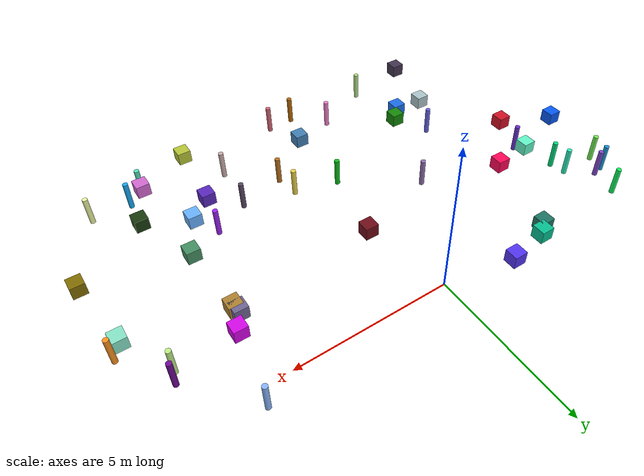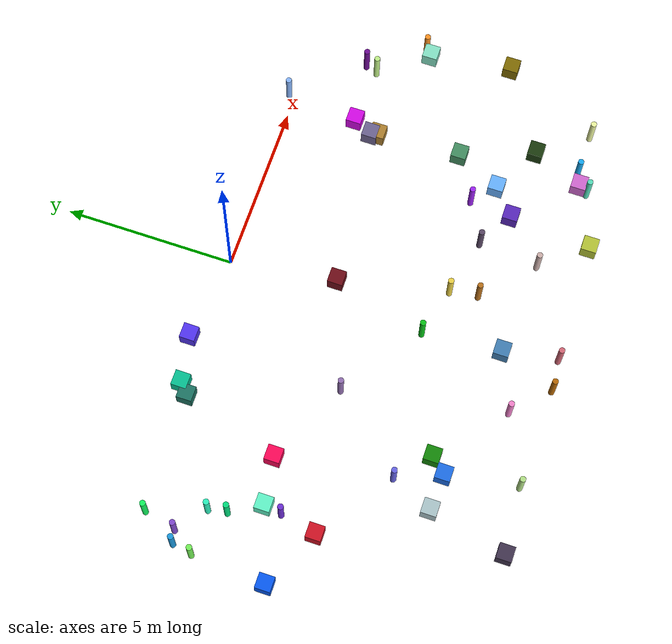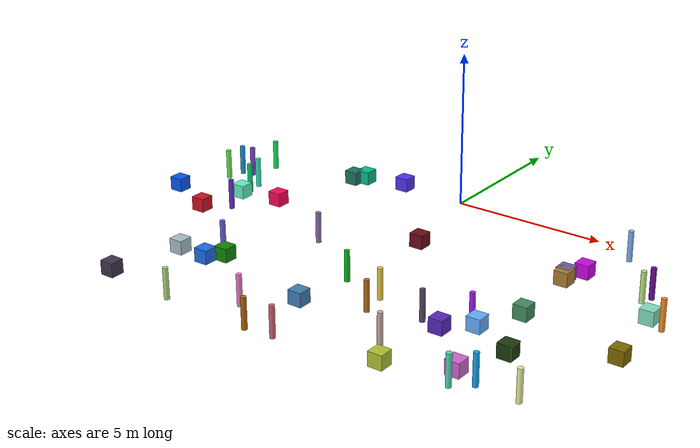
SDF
<sdf version="1.7">
 <world name="warehouse">
  <model name="ground_plane">
   <static>true</static>
   <link name="link">
    <collision name="collision">
     <geometry><plane><normal>0.0 0.0 1</normal><size>1 1</size></plane></geometry>
    </collision>
   </link>
  </model>
  <model name="unit_box_0">
   <static>true</static>
   <pose>5.26 -2.51 0 0 0 0</pose>
   <link name="link">
    <collision name="collision">
     <geometry><box><size>0.450000 0.450000 0.450000</size></box></geometry>
    </collision>
    <visual name="visual">
     <geometry><box><size>0.450000 0.450000 0.450000</size></box></geometry>
     <material>
      <ambient>0.43202939016654884 0.3962570603136538 0.5755469268648844 1</ambient>
      <diffuse>0.43202939016654884 0.3962570603136538 0.5755469268648844 1</diffuse>
      <script><uri>file://media/materials/scripts/gazebo.material</uri><name>Gazebo/RandomColor0</name></script>
     </material>
    </visual>
   </link>
  </model>
  <model name="unit_box_1">
   <static>true</static>
   <pose>-6.76 -4.89 0 0 0 0</pose>
   <link name="link">
    <collision name="collision">
     <geometry><box><size>0.450000 0.450000 0.450000</size></box></geometry>
    </collision>
    <visual name="visual">
     <geometry><box><size>0.450000 0.450000 0.450000</size></box></geometry>
     <material>
      <ambient>0.819177108545898 0.07014940217492016 0.14122524751487286 1</ambient>
      <diffuse>0.819177108545898 0.07014940217492016 0.14122524751487286 1</diffuse>
      <script><uri>file://media/materials/scripts/gazebo.material</uri><name>Gazebo/RandomColor1</name></script>
     </material>
    </visual>
   </link>
  </model>
  <model name="unit_box_2">
   <static>true</static>
   <pose>6.26 -7.34 0 0 0 0</pose>
   <link name="link">
    <collision name="collision">
     <geometry><box><size>0.450000 0.450000 0.450000</size></box></geometry>
    </collision>
    <visual name="visual">
     <geometry><box><size>0.450000 0.450000 0.450000</size></box></geometry>
     <material>
      <ambient>0.10668478872073783 0.23271584521577438 0.0581064482529583 1</ambient>
      <diffuse>0.10668478872073783 0.23271584521577438 0.0581064482529583 1</diffuse>
      <script><uri>file://media/materials/scripts/gazebo.material</uri><name>Gazebo/RandomColor2</name></script>
     </material>
    </visual>
   </link>
  </model>
  <model name="unit_cylinder_2">
   <static>true</static>
   <pose>-8.21 -1.26 0 0 0 0</pose>
   <link name="link">
    <collision name="collision">
     <geometry><cylinder><radius>0.085000</radius><length>1.000000</length></cylinder></geometry>
    </collision>
    <visual name="visual">
     <geometry><cylinder><radius>0.085000</radius><length>1.000000</length></cylinder></geometry>
     <material>
      <ambient>0.10351426530257501 0.6006918893140594 0.8723455229145314 1</ambient>
      <diffuse>0.10351426530257501 0.6006918893140594 0.8723455229145314 1</diffuse>
      <script><uri>file://media/materials/scripts/gazebo.material</uri><name>Gazebo/RandomColor2</name></script>
     </material>
    </visual>
   </link>
  </model>
  <model name="unit_box_3">
   <static>true</static>
   <pose>4.04 -7.23 0 0 0 0</pose>
   <link name="link">
    <collision name="collision">
     <geometry><box><size>0.450000 0.450000 0.450000</size></box></geometry>
    </collision>
    <visual name="visual">
     <geometry><box><size>0.450000 0.450000 0.450000</size></box></geometry>
     <material>
      <ambient>0.34692849095820044 0.15448976044086282 0.7400478806862895 1</ambient>
      <diffuse>0.34692849095820044 0.15448976044086282 0.7400478806862895 1</diffuse>
      <script><uri>file://media/materials/scripts/gazebo.material</uri><name>Gazebo/RandomColor3</name></script>
     </material>
    </visual>
   </link>
  </model>
  <model name="unit_cylinder_3">
   <static>true</static>
   <pose>-8.33 -1.84 0 0 0 0</pose>
   <link name="link">
    <collision name="collision">
     <geometry><cylinder><radius>0.085000</radius><length>1.000000</length></cylinder></geometry>
    </collision>
    <visual name="visual">
     <geometry><cylinder><radius>0.085000</radius><length>1.000000</length></cylinder></geometry>
     <material>
      <ambient>0.45447844408793303 0.943040436088593 0.34123071947217154 1</ambient>
      <diffuse>0.45447844408793303 0.943040436088593 0.34123071947217154 1</diffuse>
      <script><uri>file://media/materials/scripts/gazebo.material</uri><name>Gazebo/RandomColor3</name></script>
     </material>
    </visual>
   </link>
  </model>
  <model name="unit_box_7">
   <static>true</static>
   <pose>-4.03 -7.71 0 0 0 0</pose>
   <link name="link">
    <collision name="collision">
     <geometry><box><size>0.450000 0.450000 0.450000</size></box></geometry>
    </collision>
    <visual name="visual">
     <geometry><box><size>0.450000 0.450000 0.450000</size></box></geometry>
     <material>
      <ambient>0.10983432305211271 0.43165200785266344 0.9086816025007106 1</ambient>
      <diffuse>0.10983432305211271 0.43165200785266344 0.9086816025007106 1</diffuse>
      <script><uri>file://media/materials/scripts/gazebo.material</uri><name>Gazebo/RandomColor7</name></script>
     </material>
    </visual>
   </link>
  </model>
  <model name="unit_cylinder_7">
   <static>true</static>
   <pose>2.91 -8.39 0 0 0 0</pose>
   <link name="link">
    <collision name="collision">
     <geometry><cylinder><radius>0.085000</radius><length>1.000000</length></cylinder></geometry>
    </collision>
    <visual name="visual">
     <geometry><cylinder><radius>0.085000</radius><length>1.000000</length></cylinder></geometry>
     <material>
      <ambient>0.8035718736528988 0.6893961803614237 0.6732238959655333 1</ambient>
      <diffuse>0.8035718736528988 0.6893961803614237 0.6732238959655333 1</diffuse>
      <script><uri>file://media/materials/scripts/gazebo.material</uri><name>Gazebo/RandomColor7</name></script>
     </material>
    </visual>
   </link>
  </model>
  <model name="unit_box_8">
   <static>true</static>
   <pose>5.64 -8.84 0 0 0 0</pose>
   <link name="link">
    <collision name="collision">
     <geometry><box><size>0.450000 0.450000 0.450000</size></box></geometry>
    </collision>
    <visual name="visual">
     <geometry><box><size>0.450000 0.450000 0.450000</size></box></geometry>
     <material>
      <ambient>0.8262752305445372 0.4098498693275403 0.8204671507731207 1</ambient>
      <diffuse>0.8262752305445372 0.4098498693275403 0.8204671507731207 1</diffuse>
      <script><uri>file://media/materials/scripts/gazebo.material</uri><name>Gazebo/RandomColor8</name></script>
     </material>
    </visual>
   </link>
  </model>
  <model name="unit_box_9">
   <static>true</static>
   <pose>-5.63 -9.96 0 0 0 0</pose>
   <link name="link">
    <collision name="collision">
     <geometry><box><size>0.450000 0.450000 0.450000</size></box></geometry>
    </collision>
    <visual name="visual">
     <geometry><box><size>0.450000 0.450000 0.450000</size></box></geometry>
     <material>
      <ambient>0.25590518715539634 0.206803490912833 0.3127133192203775 1</ambient>
      <diffuse>0.25590518715539634 0.206803490912833 0.3127133192203775 1</diffuse>
      <script><uri>file://media/materials/scripts/gazebo.material</uri><name>Gazebo/RandomColor9</name></script>
     </material>
    </visual>
   </link>
  </model>
  <model name="unit_cylinder_11">
   <static>true</static>
   <pose>-1.63 -8.9 0 0 0 0</pose>
   <link name="link">
    <collision name="collision">
     <geometry><cylinder><radius>0.085000</radius><length>1.000000</length></cylinder></geometry>
    </collision>
    <visual name="visual">
     <geometry><cylinder><radius>0.085000</radius><length>1.000000</length></cylinder></geometry>
     <material>
      <ambient>0.9560895933345551 0.5076012034003116 0.8012562688026061 1</ambient>
      <diffuse>0.9560895933345551 0.5076012034003116 0.8012562688026061 1</diffuse>
      <script><uri>file://media/materials/scripts/gazebo.material</uri><name>Gazebo/RandomColor11</name></script>
     </material>
    </visual>
   </link>
  </model>
  <model name="unit_cylinder_12">
   <static>true</static>
   <pose>1.33 -6.22 0 0 0 0</pose>
   <link name="link">
    <collision name="collision">
     <geometry><cylinder><radius>0.085000</radius><length>1.000000</length></cylinder></geometry>
    </collision>
    <visual name="visual">
     <geometry><cylinder><radius>0.085000</radius><length>1.000000</length></cylinder></geometry>
     <material>
      <ambient>0.9297428224474175 0.8245526506272884 0.2701821049162041 1</ambient>
      <diffuse>0.9297428224474175 0.8245526506272884 0.2701821049162041 1</diffuse>
      <script><uri>file://media/materials/scripts/gazebo.material</uri><name>Gazebo/RandomColor12</name></script>
     </material>
    </visual>
   </link>
  </model>
  <model name="unit_box_13">
   <static>true</static>
   <pose>4.81 -6.56 0 0 0 0</pose>
   <link name="link">
    <collision name="collision">
     <geometry><box><size>0.450000 0.450000 0.450000</size></box></geometry>
    </collision>
    <visual name="visual">
     <geometry><box><size>0.450000 0.450000 0.450000</size></box></geometry>
     <material>
      <ambient>0.4045642219721922 0.6972812041949532 0.9982984414417417 1</ambient>
      <diffuse>0.4045642219721922 0.6972812041949532 0.9982984414417417 1</diffuse>
      <script><uri>file://media/materials/scripts/gazebo.material</uri><name>Gazebo/RandomColor13</name></script>
     </material>
    </visual>
   </link>
  </model>
  <model name="unit_cylinder_14">
   <static>true</static>
   <pose>0.33 -9.79 0 0 0 0</pose>
   <link name="link">
    <collision name="collision">
     <geometry><cylinder><radius>0.085000</radius><length>1.000000</length></cylinder></geometry>
    </collision>
    <visual name="visual">
     <geometry><cylinder><radius>0.085000</radius><length>1.000000</length></cylinder></geometry>
     <material>
      <ambient>0.8340839901987306 0.40238781152428527 0.46213912938035795 1</ambient>
      <diffuse>0.8340839901987306 0.40238781152428527 0.46213912938035795 1</diffuse>
      <script><uri>file://media/materials/scripts/gazebo.material</uri><name>Gazebo/RandomColor14</name></script>
     </material>
    </visual>
   </link>
  </model>
  <model name="unit_cylinder_16">
   <static>true</static>
   <pose>-7.59 -0.22 0 0 0 0</pose>
   <link name="link">
    <collision name="collision">
     <geometry><cylinder><radius>0.085000</radius><length>1.000000</length></cylinder></geometry>
    </collision>
    <visual name="visual">
     <geometry><cylinder><radius>0.085000</radius><length>1.000000</length></cylinder></geometry>
     <material>
      <ambient>0.06593349279248428 0.9611517690750122 0.37598762150471554 1</ambient>
      <diffuse>0.06593349279248428 0.9611517690750122 0.37598762150471554 1</diffuse>
      <script><uri>file://media/materials/scripts/gazebo.material</uri><name>Gazebo/RandomColor16</name></script>
     </material>
    </visual>
   </link>
  </model>
  <model name="unit_box_17">
   <static>true</static>
   <pose>-6.44 -3.3 0 0 0 0</pose>
   <link name="link">
    <collision name="collision">
     <geometry><box><size>0.450000 0.450000 0.450000</size></box></geometry>
    </collision>
    <visual name="visual">
     <geometry><box><size>0.450000 0.450000 0.450000</size></box></geometry>
     <material>
      <ambient>0.3824762522813735 0.9643269073762822 0.786280959829367 1</ambient>
      <diffuse>0.3824762522813735 0.9643269073762822 0.786280959829367 1</diffuse>
      <script><uri>file://media/materials/scripts/gazebo.material</uri><name>Gazebo/RandomColor17</name></script>
     </material>
    </visual>
   </link>
  </model>
  <model name="unit_box_18">
   <static>true</static>
   <pose>-2.45 0.36 0 0 0 0</pose>
   <link name="link">
    <collision name="collision">
     <geometry><box><size>0.450000 0.450000 0.450000</size></box></geometry>
    </collision>
    <visual name="visual">
     <geometry><box><size>0.450000 0.450000 0.450000</size></box></geometry>
     <material>
      <ambient>0.32668322412410267 0.20534435669074802 0.9529161749962964 1</ambient>
      <diffuse>0.32668322412410267 0.20534435669074802 0.9529161749962964 1</diffuse>
      <script><uri>file://media/materials/scripts/gazebo.material</uri><name>Gazebo/RandomColor18</name></script>
     </material>
    </visual>
   </link>
  </model>
  <model name="unit_cylinder_18">
   <static>true</static>
   <pose>-4.49 -6.41 0 0 0 0</pose>
   <link name="link">
    <collision name="collision">
     <geometry><cylinder><radius>0.085000</radius><length>1.000000</length></cylinder></geometry>
    </collision>
    <visual name="visual">
     <geometry><cylinder><radius>0.085000</radius><length>1.000000</length></cylinder></geometry>
     <material>
      <ambient>0.4016583978003808 0.3929259386161843 0.8950625952644654 1</ambient>
      <diffuse>0.4016583978003808 0.3929259386161843 0.8950625952644654 1</diffuse>
      <script><uri>file://media/materials/scripts/gazebo.material</uri><name>Gazebo/RandomColor18</name></script>
     </material>
    </visual>
   </link>
  </model>
  <model name="unit_cylinder_19">
   <static>true</static>
   <pose>-0.14 -5.85 0 0 0 0</pose>
   <link name="link">
    <collision name="collision">
     <geometry><cylinder><radius>0.085000</radius><length>1.000000</length></cylinder></geometry>
    </collision>
    <visual name="visual">
     <geometry><cylinder><radius>0.085000</radius><length>1.000000</length></cylinder></geometry>
     <material>
      <ambient>0.03614622663122813 0.7619976336195233 0.09520147919918553 1</ambient>
      <diffuse>0.03614622663122813 0.7619976336195233 0.09520147919918553 1</diffuse>
      <script><uri>file://media/materials/scripts/gazebo.material</uri><name>Gazebo/RandomColor19</name></script>
     </material>
    </visual>
   </link>
  </model>
  <model name="unit_cylinder_21">
   <static>true</static>
   <pose>5.91 0.28 0 0 0 0</pose>
   <link name="link">
    <collision name="collision">
     <geometry><cylinder><radius>0.085000</radius><length>1.000000</length></cylinder></geometry>
    </collision>
    <visual name="visual">
     <geometry><cylinder><radius>0.085000</radius><length>1.000000</length></cylinder></geometry>
     <material>
      <ambient>0.532237017519545 0.7155495298891122 0.9928755079456031 1</ambient>
      <diffuse>0.532237017519545 0.7155495298891122 0.9928755079456031 1</diffuse>
      <script><uri>file://media/materials/scripts/gazebo.material</uri><name>Gazebo/RandomColor21</name></script>
     </material>
    </visual>
   </link>
  </model>
  <model name="unit_box_24">
   <static>true</static>
   <pose>5.32 -2.72 0 0 0 0</pose>
   <link name="link">
    <collision name="collision">
     <geometry><box><size>0.450000 0.450000 0.450000</size></box></geometry>
    </collision>
    <visual name="visual">
     <geometry><box><size>0.450000 0.450000 0.450000</size></box></geometry>
     <material>
      <ambient>0.6879740650999271 0.5103441999961785 0.19127419115800004 1</ambient>
      <diffuse>0.6879740650999271 0.5103441999961785 0.19127419115800004 1</diffuse>
      <script><uri>file://media/materials/scripts/gazebo.material</uri><name>Gazebo/RandomColor24</name></script>
     </material>
    </visual>
   </link>
  </model>
  <model name="unit_cylinder_24">
   <static>true</static>
   <pose>7.44 -8.72 0 0 0 0</pose>
   <link name="link">
    <collision name="collision">
     <geometry><cylinder><radius>0.085000</radius><length>1.000000</length></cylinder></geometry>
    </collision>
    <visual name="visual">
     <geometry><cylinder><radius>0.085000</radius><length>1.000000</length></cylinder></geometry>
     <material>
      <ambient>0.9345702939586452 0.9740121879646203 0.6325774929678573 1</ambient>
      <diffuse>0.9345702939586452 0.9740121879646203 0.6325774929678573 1</diffuse>
      <script><uri>file://media/materials/scripts/gazebo.material</uri><name>Gazebo/RandomColor24</name></script>
     </material>
    </visual>
   </link>
  </model>
  <model name="unit_box_25">
   <static>true</static>
   <pose>3.83 -9.67 0 0 0 0</pose>
   <link name="link">
    <collision name="collision">
     <geometry><box><size>0.450000 0.450000 0.450000</size></box></geometry>
    </collision>
    <visual name="visual">
     <geometry><box><size>0.450000 0.450000 0.450000</size></box></geometry>
     <material>
      <ambient>0.7114636675275324 0.7695708656584261 0.2129040315322458 1</ambient>
      <diffuse>0.7114636675275324 0.7695708656584261 0.2129040315322458 1</diffuse>
      <script><uri>file://media/materials/scripts/gazebo.material</uri><name>Gazebo/RandomColor25</name></script>
     </material>
    </visual>
   </link>
  </model>
  <model name="unit_box_26">
   <static>true</static>
   <pose>0.51 -3.06 0 0 0 0</pose>
   <link name="link">
    <collision name="collision">
     <geometry><box><size>0.450000 0.450000 0.450000</size></box></geometry>
    </collision>
    <visual name="visual">
     <geometry><box><size>0.450000 0.450000 0.450000</size></box></geometry>
     <material>
      <ambient>0.4348542314042716 0.04759222973809096 0.09490514664035521 1</ambient>
      <diffuse>0.4348542314042716 0.04759222973809096 0.09490514664035521 1</diffuse>
      <script><uri>file://media/materials/scripts/gazebo.material</uri><name>Gazebo/RandomColor26</name></script>
     </material>
    </visual>
   </link>
  </model>
  <model name="unit_cylinder_26">
   <static>true</static>
   <pose>-7.0 -1.84 0 0 0 0</pose>
   <link name="link">
    <collision name="collision">
     <geometry><cylinder><radius>0.085000</radius><length>1.000000</length></cylinder></geometry>
    </collision>
    <visual name="visual">
     <geometry><cylinder><radius>0.085000</radius><length>1.000000</length></cylinder></geometry>
     <material>
      <ambient>0.16925477455126625 0.9476753586979708 0.7468504632036498 1</ambient>
      <diffuse>0.16925477455126625 0.9476753586979708 0.7468504632036498 1</diffuse>
      <script><uri>file://media/materials/scripts/gazebo.material</uri><name>Gazebo/RandomColor26</name></script>
     </material>
    </visual>
   </link>
  </model>
  <model name="unit_box_27">
   <static>true</static>
   <pose>-5.09 -7.65 0 0 0 0</pose>
   <link name="link">
    <collision name="collision">
     <geometry><box><size>0.450000 0.450000 0.450000</size></box></geometry>
    </collision>
    <visual name="visual">
     <geometry><box><size>0.450000 0.450000 0.450000</size></box></geometry>
     <material>
      <ambient>0.6716614065627154 0.77232260562689 0.7937108615708452 1</ambient>
      <diffuse>0.6716614065627154 0.77232260562689 0.7937108615708452 1</diffuse>
      <script><uri>file://media/materials/scripts/gazebo.material</uri><name>Gazebo/RandomColor27</name></script>
     </material>
    </visual>
   </link>
  </model>
  <model name="unit_cylinder_28">
   <static>true</static>
   <pose>6.14 -8.7 0 0 0 0</pose>
   <link name="link">
    <collision name="collision">
     <geometry><cylinder><radius>0.085000</radius><length>1.000000</length></cylinder></geometry>
    </collision>
    <visual name="visual">
     <geometry><cylinder><radius>0.085000</radius><length>1.000000</length></cylinder></geometry>
     <material>
      <ambient>0.08469001447761026 0.6664901417848329 0.9555065527380054 1</ambient>
      <diffuse>0.08469001447761026 0.6664901417848329 0.9555065527380054 1</diffuse>
      <script><uri>file://media/materials/scripts/gazebo.material</uri><name>Gazebo/RandomColor28</name></script>
     </material>
    </visual>
   </link>
  </model>
  <model name="unit_box_29">
   <static>true</static>
   <pose>-0.04 -8.19 0 0 0 0</pose>
   <link name="link">
    <collision name="collision">
     <geometry><box><size>0.450000 0.450000 0.450000</size></box></geometry>
    </collision>
    <visual name="visual">
     <geometry><box><size>0.450000 0.450000 0.450000</size></box></geometry>
     <material>
      <ambient>0.2571616289950761 0.5011931493364319 0.7088345019997413 1</ambient>
      <diffuse>0.2571616289950761 0.5011931493364319 0.7088345019997413 1</diffuse>
      <script><uri>file://media/materials/scripts/gazebo.material</uri><name>Gazebo/RandomColor29</name></script>
     </material>
    </visual>
   </link>
  </model>
  <model name="unit_cylinder_29">
   <static>true</static>
   <pose>-6.47 -3.8 0 0 0 0</pose>
   <link name="link">
    <collision name="collision">
     <geometry><cylinder><radius>0.085000</radius><length>1.000000</length></cylinder></geometry>
    </collision>
    <visual name="visual">
     <geometry><cylinder><radius>0.085000</radius><length>1.000000</length></cylinder></geometry>
     <material>
      <ambient>0.4259956005815706 0.1821493295733293 0.8332154434371939 1</ambient>
      <diffuse>0.4259956005815706 0.1821493295733293 0.8332154434371939 1</diffuse>
      <script><uri>file://media/materials/scripts/gazebo.material</uri><name>Gazebo/RandomColor29</name></script>
     </material>
    </visual>
   </link>
  </model>
  <model name="unit_cylinder_30">
   <static>true</static>
   <pose>-3.6 -9.81 0 0 0 0</pose>
   <link name="link">
    <collision name="collision">
     <geometry><cylinder><radius>0.085000</radius><length>1.000000</length></cylinder></geometry>
    </collision>
    <visual name="visual">
     <geometry><cylinder><radius>0.085000</radius><length>1.000000</length></cylinder></geometry>
     <material>
      <ambient>0.7057820524488684 0.8826934879203675 0.5312731439108992 1</ambient>
      <diffuse>0.7057820524488684 0.8826934879203675 0.5312731439108992 1</diffuse>
      <script><uri>file://media/materials/scripts/gazebo.material</uri><name>Gazebo/RandomColor30</name></script>
     </material>
    </visual>
   </link>
  </model>
  <model name="unit_cylinder_32">
   <static>true</static>
   <pose>4.27 -5.96 0 0 0 0</pose>
   <link name="link">
    <collision name="collision">
     <geometry><cylinder><radius>0.085000</radius><length>1.000000</length></cylinder></geometry>
    </collision>
    <visual name="visual">
     <geometry><cylinder><radius>0.085000</radius><length>1.000000</length></cylinder></geometry>
     <material>
      <ambient>0.6139016079540541 0.13909225122365543 0.9539204106531455 1</ambient>
      <diffuse>0.6139016079540541 0.13909225122365543 0.9539204106531455 1</diffuse>
      <script><uri>file://media/materials/scripts/gazebo.material</uri><name>Gazebo/RandomColor32</name></script>
     </material>
    </visual>
   </link>
  </model>
  <model name="unit_cylinder_33">
   <static>true</static>
   <pose>-2.52 -4.2 0 0 0 0</pose>
   <link name="link">
    <collision name="collision">
     <geometry><cylinder><radius>0.085000</radius><length>1.000000</length></cylinder></geometry>
    </collision>
    <visual name="visual">
     <geometry><cylinder><radius>0.085000</radius><length>1.000000</length></cylinder></geometry>
     <material>
      <ambient>0.5780878965373135 0.44103521330318407 0.7016694886638687 1</ambient>
      <diffuse>0.5780878965373135 0.44103521330318407 0.7016694886638687 1</diffuse>
      <script><uri>file://media/materials/scripts/gazebo.material</uri><name>Gazebo/RandomColor33</name></script>
     </material>
    </visual>
   </link>
  </model>
  <model name="unit_cylinder_35">
   <static>true</static>
   <pose>-6.9 -2.38 0 0 0 0</pose>
   <link name="link">
    <collision name="collision">
     <geometry><cylinder><radius>0.085000</radius><length>1.000000</length></cylinder></geometry>
    </collision>
    <visual name="visual">
     <geometry><cylinder><radius>0.085000</radius><length>1.000000</length></cylinder></geometry>
     <material>
      <ambient>0.005832736579069131 0.8678606807172187 0.49066304342289346 1</ambient>
      <diffuse>0.005832736579069131 0.8678606807172187 0.49066304342289346 1</diffuse>
      <script><uri>file://media/materials/scripts/gazebo.material</uri><name>Gazebo/RandomColor35</name></script>
     </material>
    </visual>
   </link>
  </model>
  <model name="unit_box_36">
   <static>true</static>
   <pose>5.57 -1.93 0 0 0 0</pose>
   <link name="link">
    <collision name="collision">
     <geometry><box><size>0.450000 0.450000 0.450000</size></box></geometry>
    </collision>
    <visual name="visual">
     <geometry><box><size>0.450000 0.450000 0.450000</size></box></geometry>
     <material>
      <ambient>0.8366093313979793 0.026785296376179657 0.9095427806909463 1</ambient>
      <diffuse>0.8366093313979793 0.026785296376179657 0.9095427806909463 1</diffuse>
      <script><uri>file://media/materials/scripts/gazebo.material</uri><name>Gazebo/RandomColor36</name></script>
     </material>
    </visual>
   </link>
  </model>
  <model name="unit_cylinder_36">
   <static>true</static>
   <pose>8.65 -3.2 0 0 0 0</pose>
   <link name="link">
    <collision name="collision">
     <geometry><cylinder><radius>0.085000</radius><length>1.000000</length></cylinder></geometry>
    </collision>
    <visual name="visual">
     <geometry><cylinder><radius>0.085000</radius><length>1.000000</length></cylinder></geometry>
     <material>
      <ambient>0.9866331751206168 0.5737793419801975 0.1283723714070022 1</ambient>
      <diffuse>0.9866331751206168 0.5737793419801975 0.1283723714070022 1</diffuse>
      <script><uri>file://media/materials/scripts/gazebo.material</uri><name>Gazebo/RandomColor36</name></script>
     </material>
    </visual>
   </link>
  </model>
  <model name="unit_cylinder_37">
   <static>true</static>
   <pose>-0.61 -9.87 0 0 0 0</pose>
   <link name="link">
    <collision name="collision">
     <geometry><cylinder><radius>0.085000</radius><length>1.000000</length></cylinder></geometry>
    </collision>
    <visual name="visual">
     <geometry><cylinder><radius>0.085000</radius><length>1.000000</length></cylinder></geometry>
     <material>
      <ambient>0.7199865145186819 0.4129972892495325 0.026690108443849336 1</ambient>
      <diffuse>0.7199865145186819 0.4129972892495325 0.026690108443849336 1</diffuse>
      <script><uri>file://media/materials/scripts/gazebo.material</uri><name>Gazebo/RandomColor37</name></script>
     </material>
    </visual>
   </link>
  </model>
  <model name="unit_box_38">
   <static>true</static>
   <pose>5.46 -5.22 0 0 0 0</pose>
   <link name="link">
    <collision name="collision">
     <geometry><box><size>0.450000 0.450000 0.450000</size></box></geometry>
    </collision>
    <visual name="visual">
     <geometry><box><size>0.450000 0.450000 0.450000</size></box></geometry>
     <material>
      <ambient>0.2660468206855803 0.5595492994048827 0.3826059663937238 1</ambient>
      <diffuse>0.2660468206855803 0.5595492994048827 0.3826059663937238 1</diffuse>
      <script><uri>file://media/materials/scripts/gazebo.material</uri><name>Gazebo/RandomColor38</name></script>
     </material>
    </visual>
   </link>
  </model>
  <model name="unit_cylinder_39">
   <static>true</static>
   <pose>7.58 -1.63 0 0 0 0</pose>
   <link name="link">
    <collision name="collision">
     <geometry><cylinder><radius>0.085000</radius><length>1.000000</length></cylinder></geometry>
    </collision>
    <visual name="visual">
     <geometry><cylinder><radius>0.085000</radius><length>1.000000</length></cylinder></geometry>
     <material>
      <ambient>0.4295907872117726 0.04564809609070808 0.5815665373497025 1</ambient>
      <diffuse>0.4295907872117726 0.04564809609070808 0.5815665373497025 1</diffuse>
      <script><uri>file://media/materials/scripts/gazebo.material</uri><name>Gazebo/RandomColor39</name></script>
     </material>
    </visual>
   </link>
  </model>
  <model name="unit_box_40">
   <static>true</static>
   <pose>-3.63 -7.26 0 0 0 0</pose>
   <link name="link">
    <collision name="collision">
     <geometry><box><size>0.450000 0.450000 0.450000</size></box></geometry>
    </collision>
    <visual name="visual">
     <geometry><box><size>0.450000 0.450000 0.450000</size></box></geometry>
     <material>
      <ambient>0.07689670579750107 0.5326730305055952 0.03348312342993842 1</ambient>
      <diffuse>0.07689670579750107 0.5326730305055952 0.03348312342993842 1</diffuse>
      <script><uri>file://media/materials/scripts/gazebo.material</uri><name>Gazebo/RandomColor40</name></script>
     </material>
    </visual>
   </link>
  </model>
  <model name="unit_cylinder_41">
   <static>true</static>
   <pose>7.45 -1.99 0 0 0 0</pose>
   <link name="link">
    <collision name="collision">
     <geometry><cylinder><radius>0.085000</radius><length>1.000000</length></cylinder></geometry>
    </collision>
    <visual name="visual">
     <geometry><cylinder><radius>0.085000</radius><length>1.000000</length></cylinder></geometry>
     <material>
      <ambient>0.7512701988845748 0.938633870387045 0.5271529296796053 1</ambient>
      <diffuse>0.7512701988845748 0.938633870387045 0.5271529296796053 1</diffuse>
      <script><uri>file://media/materials/scripts/gazebo.material</uri><name>Gazebo/RandomColor41</name></script>
     </material>
    </visual>
   </link>
  </model>
  <model name="unit_box_42">
   <static>true</static>
   <pose>-4.15 -0.18 0 0 0 0</pose>
   <link name="link">
    <collision name="collision">
     <geometry><box><size>0.450000 0.450000 0.450000</size></box></geometry>
    </collision>
    <visual name="visual">
     <geometry><box><size>0.450000 0.450000 0.450000</size></box></geometry>
     <material>
      <ambient>0.11627542725329332 0.4583203726420516 0.3942836658941421 1</ambient>
      <diffuse>0.11627542725329332 0.4583203726420516 0.3942836658941421 1</diffuse>
      <script><uri>file://media/materials/scripts/gazebo.material</uri><name>Gazebo/RandomColor42</name></script>
     </material>
    </visual>
   </link>
  </model>
  <model name="unit_box_43">
   <static>true</static>
   <pose>-8.51 -4.06 0 0 0 0</pose>
   <link name="link">
    <collision name="collision">
     <geometry><box><size>0.450000 0.450000 0.450000</size></box></geometry>
    </collision>
    <visual name="visual">
     <geometry><box><size>0.450000 0.450000 0.450000</size></box></geometry>
     <material>
      <ambient>0.02425199191442462 0.35211435258411417 0.9553321197076474 1</ambient>
      <diffuse>0.02425199191442462 0.35211435258411417 0.9553321197076474 1</diffuse>
      <script><uri>file://media/materials/scripts/gazebo.material</uri><name>Gazebo/RandomColor43</name></script>
     </material>
    </visual>
   </link>
  </model>
  <model name="unit_cylinder_43">
   <static>true</static>
   <pose>1.47 -7.05 0 0 0 0</pose>
   <link name="link">
    <collision name="collision">
     <geometry><cylinder><radius>0.085000</radius><length>1.000000</length></cylinder></geometry>
    </collision>
    <visual name="visual">
     <geometry><cylinder><radius>0.085000</radius><length>1.000000</length></cylinder></geometry>
     <material>
      <ambient>0.7306851833357394 0.4474567189970068 0.11331401550819686 1</ambient>
      <diffuse>0.7306851833357394 0.4474567189970068 0.11331401550819686 1</diffuse>
      <script><uri>file://media/materials/scripts/gazebo.material</uri><name>Gazebo/RandomColor43</name></script>
     </material>
    </visual>
   </link>
  </model>
  <model name="unit_box_44">
   <static>true</static>
   <pose>-3.85 0.09 0 0 0 0</pose>
   <link name="link">
    <collision name="collision">
     <geometry><box><size>0.450000 0.450000 0.450000</size></box></geometry>
    </collision>
    <visual name="visual">
     <geometry><box><size>0.450000 0.450000 0.450000</size></box></geometry>
     <material>
      <ambient>0.01882635334390892 0.7533399986456935 0.5726859522602362 1</ambient>
      <diffuse>0.01882635334390892 0.7533399986456935 0.5726859522602362 1</diffuse>
      <script><uri>file://media/materials/scripts/gazebo.material</uri><name>Gazebo/RandomColor44</name></script>
     </material>
    </visual>
   </link>
  </model>
  <model name="unit_cylinder_44">
   <static>true</static>
   <pose>5.6 -9.13 0 0 0 0</pose>
   <link name="link">
    <collision name="collision">
     <geometry><cylinder><radius>0.085000</radius><length>1.000000</length></cylinder></geometry>
    </collision>
    <visual name="visual">
     <geometry><cylinder><radius>0.085000</radius><length>1.000000</length></cylinder></geometry>
     <material>
      <ambient>0.33420383080152427 0.8730742082878663 0.7364677991071699 1</ambient>
      <diffuse>0.33420383080152427 0.8730742082878663 0.7364677991071699 1</diffuse>
      <script><uri>file://media/materials/scripts/gazebo.material</uri><name>Gazebo/RandomColor44</name></script>
     </material>
    </visual>
   </link>
  </model>
  <model name="unit_box_46">
   <static>true</static>
   <pose>8.36 -3.42 0 0 0 0</pose>
   <link name="link">
    <collision name="collision">
     <geometry><box><size>0.450000 0.450000 0.450000</size></box></geometry>
    </collision>
    <visual name="visual">
     <geometry><box><size>0.450000 0.450000 0.450000</size></box></geometry>
     <material>
      <ambient>0.5246355954504099 0.8935564268774233 0.779163586197182 1</ambient>
      <diffuse>0.5246355954504099 0.8935564268774233 0.779163586197182 1</diffuse>
      <script><uri>file://media/materials/scripts/gazebo.material</uri><name>Gazebo/RandomColor46</name></script>
     </material>
    </visual>
   </link>
  </model>
  <model name="unit_box_47">
   <static>true</static>
   <pose>-5.05 -3.1 0 0 0 0</pose>
   <link name="link">
    <collision name="collision">
     <geometry><box><size>0.450000 0.450000 0.450000</size></box></geometry>
    </collision>
    <visual name="visual">
     <geometry><box><size>0.450000 0.450000 0.450000</size></box></geometry>
     <material>
      <ambient>0.9996475399238838 0.022716434345266268 0.3467687836393939 1</ambient>
      <diffuse>0.9996475399238838 0.022716434345266268 0.3467687836393939 1</diffuse>
      <script><uri>file://media/materials/scripts/gazebo.material</uri><name>Gazebo/RandomColor47</name></script>
     </material>
    </visual>
   </link>
  </model>
  <model name="unit_cylinder_48">
   <static>true</static>
   <pose>3.06 -6.61 0 0 0 0</pose>
   <link name="link">
    <collision name="collision">
     <geometry><cylinder><radius>0.085000</radius><length>1.000000</length></cylinder></geometry>
    </collision>
    <visual name="visual">
     <geometry><cylinder><radius>0.085000</radius><length>1.000000</length></cylinder></geometry>
     <material>
      <ambient>0.35690536725670163 0.28405377914105756 0.4023670342840773 1</ambient>
      <diffuse>0.35690536725670163 0.28405377914105756 0.4023670342840773 1</diffuse>
      <script><uri>file://media/materials/scripts/gazebo.material</uri><name>Gazebo/RandomColor48</name></script>
     </material>
    </visual>
   </link>
  </model>
  <model name="unit_box_49">
   <static>true</static>
   <pose>8.71 -5.85 0 0 0 0</pose>
   <link name="link">
    <collision name="collision">
     <geometry><box><size>0.450000 0.450000 0.450000</size></box></geometry>
    </collision>
    <visual name="visual">
     <geometry><box><size>0.450000 0.450000 0.450000</size></box></geometry>
     <material>
      <ambient>0.5067010542964743 0.42352104608326135 0.008049334977259126 1</ambient>
      <diffuse>0.5067010542964743 0.42352104608326135 0.008049334977259126 1</diffuse>
      <script><uri>file://media/materials/scripts/gazebo.material</uri><name>Gazebo/RandomColor49</name></script>
     </material>
    </visual>
   </link>
  </model>
  <model name="unit_cylinder_49">
   <static>true</static>
   <pose>-7.83 -1.17 0 0 0 0</pose>
   <link name="link">
    <collision name="collision">
     <geometry><cylinder><radius>0.085000</radius><length>1.000000</length></cylinder></geometry>
    </collision>
    <visual name="visual">
     <geometry><cylinder><radius>0.085000</radius><length>1.000000</length></cylinder></geometry>
     <material>
      <ambient>0.5044421077362038 0.28969462641759014 0.8160758649104254 1</ambient>
      <diffuse>0.5044421077362038 0.28969462641759014 0.8160758649104254 1</diffuse>
      <script><uri>file://media/materials/scripts/gazebo.material</uri><name>Gazebo/RandomColor49</name></script>
     </material>
    </visual>
   </link>
  </model>
 </world>
</sdf>
